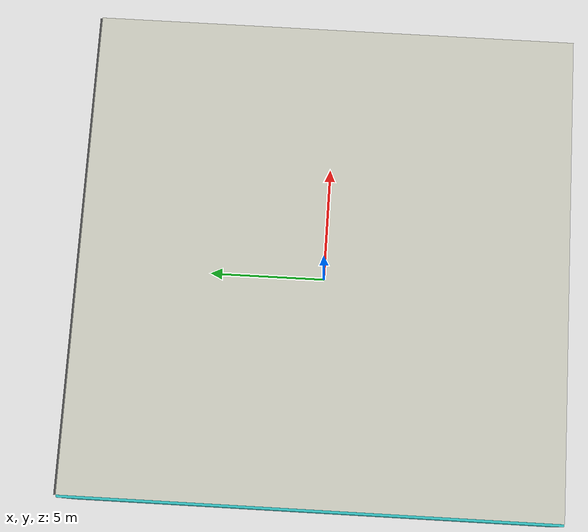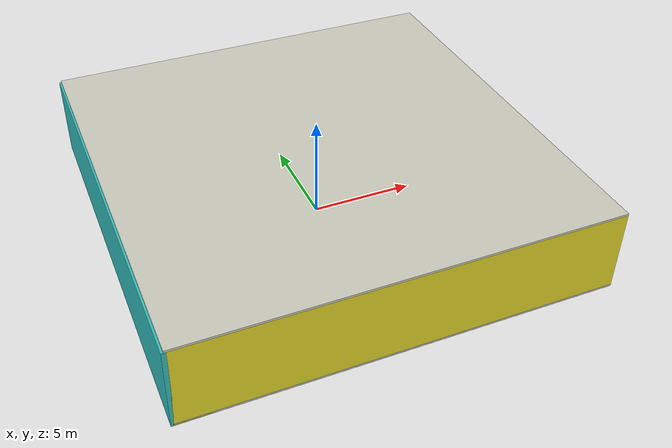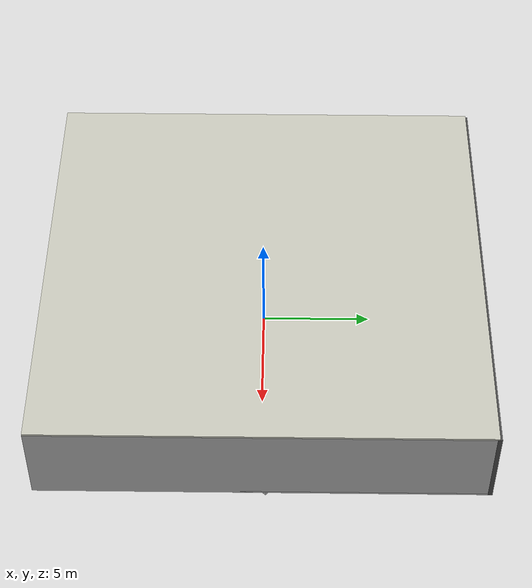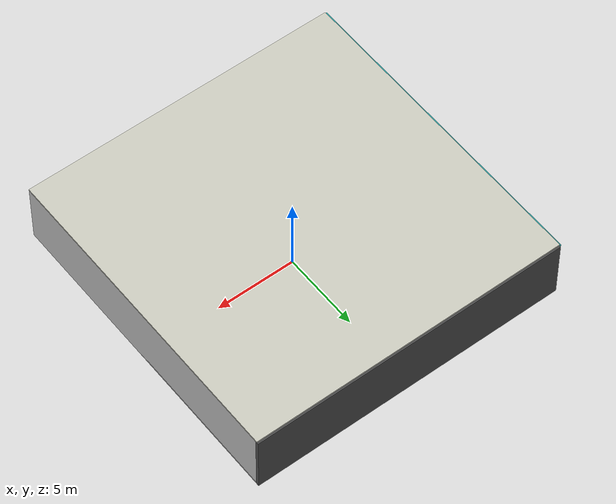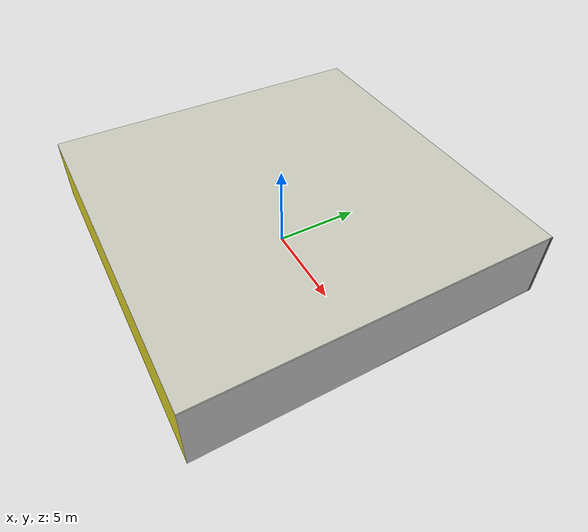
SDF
<sdf version="1.4">
 <world name="default">
  <physics type="ode">
   <max_step_size>0.001</max_step_size>
   <real_time_factor>1</real_time_factor>
   <real_time_update_rate>1000</real_time_update_rate>
   <gravity>0 0 -9.8</gravity>
  </physics>
  <scene><ambient>0.4 0.4 0.4 1</ambient><background>0.7 0.7 0.7 1</background><shadows>1</shadows></scene>
  <model name="Surrounding">
   <static>1</static>
   <link name="Ceiling">
    <collision name="Ceiling_Collision"><geometry><box><size>20 20 0.1</size></box></geometry></collision>
    <visual name="Ceiling_Visual">
     <geometry><box><size>20 20 0.1</size></box></geometry>
     <material>
      <script><uri>file://media/materials/scripts/gazebo.material</uri><name>Gazebo/PaintedWall</name></script>
     </material>
    </visual>
    <pose>0 0 4.05 0 0 0</pose>
   </link>
   <link name="Wall_South">
    <collision name="Wall_South_Collision">
     <geometry><box><size>20 0 4</size></box></geometry>
     <pose>0 0 2 0 -0 0</pose>
    </collision>
    <visual name="Wall_South_Visual">
     <pose>0 0 2 0 -0 0</pose>
     <geometry><box><size>20 0 4</size></box></geometry>
     <material>
      <script><uri>file://media/materials/scripts/gazebo.material</uri><name>Gazebo/Yellow</name></script>
     </material>
    </visual>
    <velocity_decay><linear>0</linear><angular>0</angular></velocity_decay>
    <pose>0 -10 0 0 -0 0</pose>
   </link>
   <link name="Wall_East">
    <collision name="Wall_21_Collision">
     <geometry><box><size>20 0 4</size></box></geometry>
     <pose>0 0 2 0 -0 0</pose>
    </collision>
    <visual name="Wall_21_Visual">
     <pose>0 0 2 0 -0 0</pose>
     <geometry><box><size>20 0 4</size></box></geometry>
     <material>
      <script><uri>file://media/materials/scripts/gazebo.material</uri><name>Gazebo/JointAnchor</name></script>
     </material>
    </visual>
    <velocity_decay><linear>0</linear><angular>0</angular></velocity_decay>
    <pose>10 0 0 0 -0 1.5708</pose>
   </link>
   <link name="Wall_North">
    <collision name="Wall_22_Collision">
     <geometry><box><size>20 0.2 4</size></box></geometry>
     <pose>0 0 2 0 -0 0</pose>
    </collision>
    <visual name="Wall_22_Visual">
     <pose>0 0 2 0 -0 0</pose>
     <geometry><box><size>20 0.2 4</size></box></geometry>
     <material>
      <script><uri>file://media/materials/scripts/gazebo.material</uri><name>Gazebo/DarkGrey</name></script>
     </material>
    </visual>
    <velocity_decay><linear>0</linear><angular>0</angular></velocity_decay>
    <pose>0 10 0 0 -0 0</pose>
   </link>
   <link name="Wall_West">
    <collision name="Wall_23_Collision">
     <geometry><box><size>20 0.2 4</size></box></geometry>
     <pose>0 0 2 0 -0 0</pose>
    </collision>
    <visual name="Wall_23_Visual">
     <pose>0 0 2 0 -0 0</pose>
     <geometry><box><size>20 0.2 4</size></box></geometry>
     <material>
      <script>
       <uri>file://media/materials/scripts/gazebo.material</uri>
       <name>Gazebo/TurquoiseGlowOutline</name>
      </script>
     </material>
    </visual>
    <velocity_decay><linear>0</linear><angular>0</angular></velocity_decay>
    <pose>-10 0 0 0 0 -1.5708</pose>
   </link>
   <link name="Ground_link">
    <collision name="collision">
     <pose>0 0 .05 0 -0 0</pose>
     <geometry><box><size>20 20 0.1</size></box></geometry>
    </collision>
    <visual name="visual">
     <pose>0 0 .05 0 -0 0</pose>
     <geometry><box><size>20 20 0.1</size></box></geometry>
     <material>
      <script><uri>file://media/materials/scripts/gazebo.material</uri><name>Gazebo/Pioneer2Body</name></script>
     </material>
    </visual>
   </link>
   <static>1</static>
  </model>
  <spherical_coordinates>
   <surface_model>EARTH_WGS84</surface_model>
   <latitude_deg>0</latitude_deg>
   <longitude_deg>0</longitude_deg>
   <elevation>0</elevation>
   <heading_deg>0</heading_deg>
  </spherical_coordinates>
  <light name="lightball_0" type="diffuse">
   <diffuse>0.8 0.8 0.8 1</diffuse>
   <specular>0.2 0.2 0.2 1</specular>
   <attenuation>
    <range>100</range>
    <constant>0.7</constant>
    <linear>0.01</linear>
    <quadratic>0.001</quadratic>
   </attenuation>
   <direction>-0.5 0.1 -0.9</direction>
   <pose>0.408310425009 -3.60762600082 0.97146666907 0 0 0</pose>
  </light>
  <light name="lightball_1" type="diffuse">
   <diffuse>0.8 0.8 0.8 1</diffuse>
   <specular>0.2 0.2 0.2 1</specular>
   <attenuation>
    <range>100</range>
    <constant>0.7</constant>
    <linear>0.01</linear>
    <quadratic>0.001</quadratic>
   </attenuation>
   <direction>-0.5 0.1 -0.9</direction>
   <pose>-8.95623030808 2.34672542384 0.703875388907 0 0 0</pose>
  </light>
  <light name="lightball_2" type="diffuse">
   <diffuse>0.8 0.8 0.8 1</diffuse>
   <specular>0.2 0.2 0.2 1</specular>
   <attenuation>
    <range>100</range>
    <constant>0.7</constant>
    <linear>0.01</linear>
    <quadratic>0.001</quadratic>
   </attenuation>
   <direction>-0.5 0.1 -0.9</direction>
   <pose>-7.77671812455 -2.26688865153 3.5518888897 0 0 0</pose>
  </light>
  <include>
   <uri>model://robocup_3Dsim_goal</uri>
   <pose>-7.83249666979 4.27041300187 0 0 0 3.00454197742</pose>
  </include>
  <include><uri>model://cabinet</uri><pose>-4.55422924571 -4.12730522822 0 0 0 0.066672871303</pose></include>
  <include>
   <uri>model://robocup_3Dsim_goal</uri>
   <pose>-4.75344425235 5.21838748782 0 0 0 1.83481084257</pose>
  </include>
  <include><uri>model://cabinet</uri><pose>4.31997444772 -4.65709132329 0 0 0 2.03788107431</pose></include>
  <include>
   <uri>model://textured_shapes</uri>
   <pose>7.94229977301 1.13389086192 0 0 0 0.862315306044</pose>
  </include>
 </world>
</sdf>

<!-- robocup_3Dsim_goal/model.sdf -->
<sdf version="1.5">
  <model name="robocup_3d_goal">
    <static>true</static>
    <link name="left_post">
      <pose>0 1.05 0.45 0 0 0</pose>
      <collision name="collision">
        <geometry>
          <cylinder>
            <radius>0.05</radius>
            <length>0.9</length>
          </cylinder>
        </geometry>
      </collision>
      <visual name="visual">
        <geometry>
          <cylinder>
            <radius>0.05</radius>
            <length>0.9</length>
          </cylinder>
        </geometry>
        <material>
          <script>
            <uri>file://media/materials/scripts/gazebo.material</uri>
            <name>Gazebo/ZincYellow</name>
          </script>
        </material>
      </visual>
    </link>
    <link name="left_support_horiz_lower">
      <pose>0.30 1.05 0.01 0 0 0</pose>
      <collision name="collision">
        <geometry>
          <box>
            <size>0.50 0.02 0.02</size>
          </box>
        </geometry>
      </collision>
      <visual name="visual">
        <geometry>
          <box>
            <size>0.50 0.02 0.02</size>
          </box>
        </geometry>
        <material>
          <script>
            <uri>file://media/materials/scripts/gazebo.material</uri>
            <name>Gazebo/White</name>
          </script>
        </material>
      </visual>
    </link>
    <link name="left_support_horiz_upper">
      <pose>0.30 1.05 0.79 0 0 0</pose>
      <collision name="collision">
        <geometry>
          <box>
            <size>0.50 0.02 0.02</size>
          </box>
        </geometry>
      </collision>
      <visual name="visual">
        <geometry>
          <box>
            <size>0.50 0.02 0.02</size>
          </box>
        </geometry>
        <material>
          <script>
            <uri>file://media/materials/scripts/gazebo.material</uri>
            <name>Gazebo/White</name>
          </script>
        </material>
      </visual>
    </link>
    <link name="left_support_vertical">
      <pose>0.56 1.05 0.4 0 1.5708 0</pose>
      <collision name="collision">
        <geometry>
          <box>
            <size>0.80 0.02 0.02</size>
          </box>
        </geometry>
      </collision>
      <visual name="visual">
        <geometry>
          <box>
            <size>0.80 0.02 0.02</size>
          </box>
        </geometry>
        <material>
          <script>
            <uri>file://media/materials/scripts/gazebo.material</uri>
            <name>Gazebo/White</name>
          </script>
        </material>
      </visual>
    </link>
    <link name="right_support_horiz_lower">
      <pose>0.30 -1.05 0.01 0 0 0</pose>
      <collision name="collision">
        <geometry>
          <box>
            <size>0.50 0.02 0.02</size>
          </box>
        </geometry>
      </collision>
      <visual name="visual">
        <geometry>
          <box>
            <size>0.50 0.02 0.02</size>
          </box>
        </geometry>
        <material>
          <script>
            <uri>file://media/materials/scripts/gazebo.material</uri>
            <name>Gazebo/White</name>
          </script>
        </material>
      </visual>
    </link>
    <link name="right_support_horiz_upper">
      <pose>0.30 -1.05 0.79 0 0 0</pose>
      <collision name="collision">
        <geometry>
          <box>
            <size>0.50 0.02 0.02</size>
          </box>
        </geometry>
      </collision>
      <visual name="visual">
        <geometry>
          <box>
            <size>0.50 0.02 0.02</size>
          </box>
        </geometry>
        <material>
          <script>
            <uri>file://media/materials/scripts/gazebo.material</uri>
            <name>Gazebo/White</name>
          </script>
        </material>
      </visual>
    </link>
    <link name="right_support_vertical">
      <pose>0.56 -1.05 0.4 0 1.5708 0</pose>
      <collision name="collision">
        <geometry>
          <box>
            <size>0.80 0.02 0.02</size>
          </box>
        </geometry>
      </collision>
      <visual name="visual">
        <geometry>
          <box>
            <size>0.80 0.02 0.02</size>
          </box>
        </geometry>
        <material>
          <script>
            <uri>file://media/materials/scripts/gazebo.material</uri>
            <name>Gazebo/White</name>
          </script>
        </material>
      </visual>
    </link>
    <link name="center_support_horiz_lower">
      <pose>0.56 0 0.01 0 1.5708 0</pose>
      <collision name="collision">
        <geometry>
          <box>
            <size>0.02 2.08 0.02</size>
          </box>
        </geometry>
      </collision>
      <visual name="visual">
        <geometry>
          <box>
            <size>0.02 2.08 0.02</size>
          </box>
        </geometry>
        <material>
          <script>
            <uri>file://media/materials/scripts/gazebo.material</uri>
            <name>Gazebo/White</name>
          </script>
        </material>
      </visual>
    </link>
    <link name="center_support_horiz_upper">
      <pose>0.56 0 0.79 0 1.5708 0</pose>
      <collision name="collision">
        <geometry>
          <box>
            <size>0.02 2.08 0.02</size>
          </box>
        </geometry>
      </collision>
      <visual name="visual">
        <geometry>
          <box>
            <size>0.02 2.08 0.02</size>
          </box>
        </geometry>
        <material>
          <script>
            <uri>file://media/materials/scripts/gazebo.material</uri>
            <name>Gazebo/White</name>
          </script>
        </material>
      </visual>
    </link>
    <link name="right_post">
      <pose>0 -1.05 0.45 0 0 0</pose>
      <collision name="collision">
        <geometry>
          <cylinder>
            <radius>0.05</radius>
            <length>0.9</length>
          </cylinder>
        </geometry>
      </collision>
      <visual name="visual">
        <geometry>
          <cylinder>
            <radius>0.05</radius>
            <length>0.9</length>
          </cylinder>
        </geometry>
        <material>
          <script>
            <uri>file://media/materials/scripts/gazebo.material</uri>
            <name>Gazebo/ZincYellow</name>
          </script>
        </material>
      </visual>
    </link>
    <link name="crossbar">
      <pose>0 0 0.85 1.57 1.57 0</pose>
      <collision name="collision">
        <geometry>
          <cylinder>
            <radius>0.05</radius>
            <length>2.0</length>
          </cylinder>
        </geometry>
      </collision>
      <visual name="visual">
        <geometry>
          <cylinder>
            <radius>0.05</radius>
            <length>2.0</length>
          </cylinder>
        </geometry>
        <material>
          <script>
            <uri>file://media/materials/scripts/gazebo.material</uri>
            <name>Gazebo/ZincYellow</name>
          </script>
        </material>
      </visual>
    </link>
    <link name="center_net">
      <pose>0.56 0 0.40 0 0 0</pose>
      <collision name="collision">
        <geometry>
          <box>
            <size>0.01 2.1 0.80</size>
          </box>
        </geometry>
      </collision>
      <visual name="visual">
        <geometry>
          <box>
            <size>0.01 2.1 0.80</size>
          </box>
        </geometry>
        <material>
          <script>
            <uri>model://../model_source/models/robocup09_spl_field/materials/scripts/</uri>
            <uri>model://../model_source/models/robocup09_spl_field/materials/textures/</uri>
            <name>RoboCup/Net</name>
          </script>
        </material>
      </visual>
    </link>
    <link name="left_net">
      <pose>0.30 1.05 0.40 0 0 0</pose>
      <collision name="collision">
        <geometry>
          <box>
            <size>0.50 0.01 0.76</size>
          </box>
        </geometry>
      </collision>
      <visual name="visual">
        <geometry>
          <box>
            <size>0.50 0.01 0.76</size>
          </box>
        </geometry>
        <material>
          <script>
            <uri>model://../model_source/models/robocup09_spl_field/materials/scripts/</uri>
            <uri>model://../model_source/models/robocup09_spl_field/materials/textures/</uri>
            <name>RoboCup/Net</name>
          </script>
        </material>
      </visual>
    </link>
    <link name="right_net">
      <pose>0.30 -1.05 0.40 0 0 0</pose>
      <collision name="collision">
        <geometry>
          <box>
            <size>0.50 0.01 0.76</size>
          </box>
        </geometry>
      </collision>
      <visual name="visual">
        <geometry>
          <box>
            <size>0.50 0.01 0.76</size>
          </box>
        </geometry>
        <material>
          <script>
            <uri>model://../model_source/models/robocup09_spl_field/materials/scripts/</uri>
            <uri>model://../model_source/models/robocup09_spl_field/materials/textures/</uri>
            <name>RoboCup/Net</name>
          </script>
        </material>
      </visual>
    </link>
  </model>
</sdf>

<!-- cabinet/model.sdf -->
<sdf version="1.5">
  <model name="cabinet">
    <static>true</static>
    <link name="cabinet_bottom_plate">
      <inertial>
        <pose>0 0 -1 0 0 0</pose>
        <inertia>
          <ixx>2.050000</ixx>
          <ixy>0</ixy>
          <ixz>0</ixz>
          <iyy>2.050000</iyy>
          <iyz>0</iyz>
          <izz>2.050000</izz>
        </inertia>
        <mass>25.000000</mass>
      </inertial>
      <collision name="cabinet_bottom_plate_geom">
        <pose>0 0 0.010000 0 0 0</pose>
        <geometry>
          <box>
            <size>0.450000 0.450000 0.020000</size>
          </box>
        </geometry>
      </collision>
      <visual name="cabinet_bottom_plate_geom_visual">
        <pose>0 0 0.010000 0 0 0</pose>
        <geometry>
          <box>
            <size>0.450000 0.450000 0.020000</size>
          </box>
        </geometry>
        <material>
          <script>
            <uri>model://media/materials/scripts/gazebo.material</uri>
            <name>Gazebo/Wood</name>
          </script>
        </material>
      </visual>
      <collision name="cabinet_bottom_plate_geom_cabinet_back_plate">
        <pose>0.235000 0 0.510000 0 0 0</pose>
        <geometry>
          <box>
            <size>0.020000 0.450000 1.020000</size>
          </box>
        </geometry>
      </collision>
      <visual name="cabinet_bottom_plate_geom_cabinet_back_plate_visual">
        <pose>0.235000 0 0.510000 0 0 0</pose>
        <geometry>
          <box>
            <size>0.020000 0.450000 1.020000</size>
          </box>
        </geometry>
        <material>
          <script>
            <uri>model://media/materials/scripts/gazebo.material</uri>
            <name>Gazebo/Wood</name>
          </script>
        </material>
      </visual>
      <collision name="cabinet_bottom_plate_geom_cabinet_left_plate">
        <pose>0 0.235000 0.510000 0 0 0</pose>
        <geometry>
          <box>
            <size>0.450000 0.020000 1.020000</size>
          </box>
        </geometry>
      </collision>
      <visual name="cabinet_bottom_plate_geom_cabinet_left_plate_visual">
        <pose>0 0.235000 0.510000 0 0 0</pose>
        <geometry>
          <box>
            <size>0.450000 0.020000 1.020000</size>
          </box>
        </geometry>
        <material>
          <script>
            <uri>model://media/materials/scripts/gazebo.material</uri>
            <name>Gazebo/Wood</name>
          </script>
        </material>
      </visual>
      <collision name="cabinet_bottom_plate_geom_cabinet_middle_plate">
        <pose>0 0 0.510000 0 0 0</pose>
        <geometry>
          <box>
            <size>0.450000 0.450000 0.020000</size>
          </box>
        </geometry>
      </collision>
      <visual name="cabinet_bottom_plate_geom_cabinet_middle_plate_visual">
        <pose>0 0 0.510000 0 0 0</pose>
        <geometry>
          <box>
            <size>0.450000 0.450000 0.020000</size>
          </box>
        </geometry>
        <material>
          <script>
            <uri>model://media/materials/scripts/gazebo.material</uri>
            <name>Gazebo/Wood</name>
          </script>
        </material>
      </visual>
      <collision name="cabinet_bottom_plate_geom_cabinet_right_plate">
        <pose>0 -0.235000 0.510000 0 0 0</pose>
        <geometry>
          <box>
            <size>0.450000 0.020000 1.020000</size>
          </box>
        </geometry>
      </collision>
      <visual name="cabinet_bottom_plate_geom_cabinet_right_plate_visual">
        <pose>0 -0.235000 0.510000 0 0 0</pose>
        <geometry>
          <box>
            <size>0.450000 0.020000 1.020000</size>
          </box>
        </geometry>
        <material>
          <script>
            <uri>model://media/materials/scripts/gazebo.material</uri>
            <name>Gazebo/Wood</name>
          </script>
        </material>
      </visual>
      <collision name="cabinet_bottom_plate_geom_cabinet_top_plate">
        <pose>0 0 1.010000 0 0 0</pose>
        <geometry>
          <box>
            <size>0.450000 0.450000 0.020000</size>
          </box>
        </geometry>
      </collision>
      <visual name="cabinet_bottom_plate_geom_cabinet_top_plate_visual">
        <pose>0 0 1.010000 0 0 0</pose>
        <geometry>
          <box>
            <size>0.450000 0.450000 0.020000</size>
          </box>
        </geometry>
        <material>
          <script>
            <uri>model://media/materials/scripts/gazebo.material</uri>
            <name>Gazebo/Wood</name>
          </script>
        </material>
      </visual>
    </link>
  </model>
</sdf>

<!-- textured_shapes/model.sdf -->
<sdf version="1.6">
  <model name="textured_shapes">
    <pose>0 0 0.5 0 0 0</pose>
    <link name="box">
      <pose>0 -1.5 0 0 0 0</pose>
      <collision name="collision">
        <geometry>
          <box>
            <size>1 1 1</size>
          </box>
        </geometry>
      </collision>
      <visual name="visual">
        <geometry>
          <box>
            <size>1 1 1</size>
          </box>
        </geometry>
        <material>
          <script>
            <uri>model://../model_source/models/textured_shapes/materials/scripts</uri>
            <uri>model://../model_source/models/textured_shapes/materials/textures</uri>
            <name>TexturedShape/Squares</name>
          </script>
        </material>
      </visual>
    </link>
    <link name="sphere">
      <collision name="collision">
        <geometry>
          <sphere>
            <radius>0.5</radius>
          </sphere>
        </geometry>
      </collision>
      <visual name="visual">
        <geometry>
          <sphere>
            <radius>0.5</radius>
          </sphere>
        </geometry>
        <material>
          <script>
            <uri>model://../model_source/models/textured_shapes/materials/scripts</uri>
            <uri>model://../model_source/models/textured_shapes/materials/textures</uri>
            <name>TexturedShape/Squares</name>
          </script>
        </material>
      </visual>
    </link>
    <link name="cylinder">
      <pose>0 1.5 0 0 0 0</pose>
      <collision name="collision">
        <geometry>
          <cylinder>
            <radius>0.5</radius>
            <length>1</length>
          </cylinder>
        </geometry>
      </collision>
      <visual name="visual">
        <geometry>
          <cylinder>
            <radius>0.5</radius>
            <length>1</length>
          </cylinder>
        </geometry>
        <material>
          <script>
            <uri>model://../model_source/models/textured_shapes/materials/scripts</uri>
            <uri>model://../model_source/models/textured_shapes/materials/textures</uri>
            <name>TexturedShape/Squares</name>
          </script>
        </material>
      </visual>
    </link>
  </model>
</sdf>
